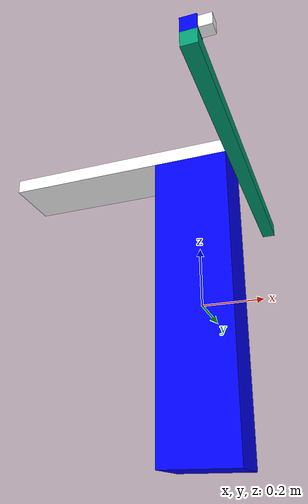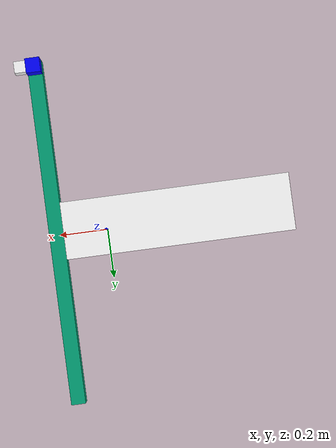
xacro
<?xml version="1.0"?>
<robot xmlns:xacro="http://www.ros.org/wiki/xacro" name="robot">
    <xacro:arg name="initial_positions_file" default="initial_positions.yaml" />

    <!-- Import robot urdf file -->
    <xacro:include filename="$(find urdf_tutorial)/urdf/robot.urdf" />

    <!-- Import control_xacro -->
    <xacro:include filename="robot.ros2_control.xacro" />

    <xacro:robot_ros2_control name="FakeSystem" initial_positions_file="$(arg initial_positions_file)"/>

</robot>

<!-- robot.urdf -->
<robot name="robot">

  <material name="red">
    <color rgba="1 0 0 1"/>
  </material>
  <material name="blue">
    <color rgba="0 0 1 1"/>
  </material>
  <material name="white">
    <color rgba="1 1 1 1"/>
  </material>
  <material name="green">
    <color rgba="0 1 0 1"/>
  </material>

  <link name="base_link">
    <visual>
      <geometry>
        <box size="0.25 0.20 1"/>
      </geometry>
      <material name="blue"/>
    </visual>
    <collision>
      <geometry>
        <box size="0.25 0.20 1"/>
      </geometry>
    </collision>
  </link>

  <link name="transX_Axes">
    <visual>
      <geometry>
        <box size="0.8 0.2 0.05"/>
      </geometry>
      <material name="white"/>
    </visual>
    <collision>
      <geometry>
        <box size="0.8 0.2 0.05"/>
      </geometry>
    </collision>

  </link>

  <joint name="X_Translation" type="prismatic">
    <parent link="base_link"/>
    <child link="transX_Axes"/>
    <limit effort="1000.0" lower="0" upper="0.550" velocity="0.5"/>
    <origin xyz="-0.275 0 0.525"/>
  </joint>

  <link name="transY_Base">
    <visual>
      <geometry>
        <box size="0.05 1.20 0.05"/>
      </geometry>
    </visual>
    <collision>
      <geometry>
        <box size="0.05 1.20 0.05"/>
      </geometry>
    </collision>

  </link>

  <joint name="TransY_Fixation" type="fixed">
    <parent link="transX_Axes"/>
    <child link="transY_Base"/>
    <origin xyz="0.425 0 0"/>
  </joint>

  <link name="transY_Box">
    <visual>
      <geometry>
        <box size="0.05 0.05 0.05"/>
      </geometry>
      <material name="blue"/>
    </visual>
    <collision>
      <geometry>
        <box size="0.05 0.05 0.05"/>
      </geometry>
    </collision>

  </link>

  <joint name="Y_Translation" type="prismatic">
    <parent link="transY_Base"/>
    <child link="transY_Box"/>
    <axis xyz="0 1 0"/>
    <limit effort="1000.0" lower="0" upper="1.15" velocity="0.5"/>
    <origin xyz="0 -0.575 0.05"/>
  </joint>

  <link name="Rotation_Part">
    <visual>
      <geometry>
        <box size="0.04 0.04 0.04"/>
      </geometry>
      <material name="white"/>
    </visual>
    <collision>
      <geometry>
        <box size="0.04 0.04 0.04"/>
      </geometry>
    </collision>

  </link>

  <joint name="Rotation" type="continuous">
    <parent link="transY_Box"/>
    <child link="Rotation_Part"/>
    <origin xyz="0.045 0 0"/>
  </joint>

</robot>
